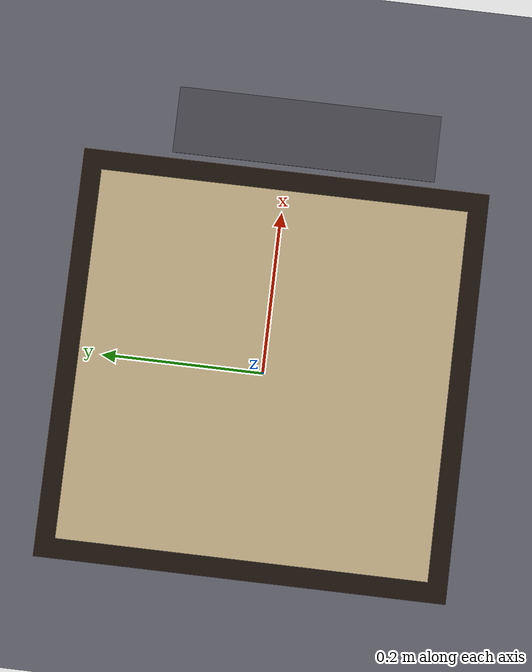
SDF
<?xml version="1.0" ?>
<sdf version="1.11">
  <world name="chess">

    <physics name="1ms" type="dart">
      <max_step_size>0.001</max_step_size>
      <real_time_factor>1.0</real_time_factor>
    </physics>

    <plugin filename="gz-sim-physics-system"
            name="gz::sim::systems::Physics"/>
    <plugin filename="gz-sim-user-commands-system"
            name="gz::sim::systems::UserCommands"/>
    <plugin filename="gz-sim-scene-broadcaster-system"
            name="gz::sim::systems::SceneBroadcaster"/>
    <!-- Pre-wired for future piece/gripper contact sensing; no contact sensors yet in Phase 0. -->
    <plugin filename="gz-sim-contact-system"
            name="gz::sim::systems::Contact"/>

    <light type="directional" name="sun">
      <cast_shadows>true</cast_shadows>
      <pose>0 0 6 0 0 0</pose>
      <diffuse>0.9 0.9 0.9 1</diffuse>
      <specular>0.3 0.3 0.3 1</specular>
      <direction>-0.3 0.2 -0.9</direction>
    </light>

    <scene>
      <ambient>0.4 0.4 0.4 1</ambient>
      <background>0.7 0.78 0.85 1</background>
    </scene>

    <!-- Table / ground plane (board surface datum z=0). -->
    <model name="ground_plane">
      <static>true</static>
      <link name="link">
        <collision name="collision">
          <geometry><plane><normal>0 0 1</normal><size>4 4</size></plane></geometry>
        </collision>
        <visual name="visual">
          <geometry><plane><normal>0 0 1</normal><size>4 4</size></plane></geometry>
          <material>
            <ambient>0.3 0.3 0.32 1</ambient>
            <diffuse>0.4 0.4 0.45 1</diffuse>
          </material>
        </visual>
      </link>
    </model>

    <!-- Chessboard: frame + playing surface, top face at z=0. -->
    <model name="chessboard">
      <static>true</static>
      <pose>0 0 0 0 0 0</pose>
      <link name="link">
        <visual name="frame">
          <pose>0 0 -0.006 0 0 0</pose>
          <geometry><box><size>0.5072 0.5072 0.012</size></box></geometry>
          <material>
            <ambient>0.12 0.08 0.05 1</ambient>
            <diffuse>0.12 0.08 0.05 1</diffuse>
          </material>
        </visual>
        <visual name="surface">
          <pose>0 0 0.001 0 0 0</pose>
          <geometry><box><size>0.4572 0.4572 0.002</size></box></geometry>
          <material>
            <ambient>0.80 0.72 0.55 1</ambient>
            <diffuse>0.80 0.72 0.55 1</diffuse>
          </material>
        </visual>
        <collision name="collision">
          <pose>0 0 -0.006 0 0 0</pose>
          <geometry><box><size>0.5072 0.5072 0.012</size></box></geometry>
        </collision>
      </link>
    </model>

    <!-- Capture graveyard tray on the +X side. -->
    <model name="graveyard">
      <static>true</static>
      <pose>0.3025 -0.020 0 0 0 0</pose>
      <link name="link">
        <visual name="tray">
          <pose>0 0 -0.005 0 0 0</pose>
          <geometry><box><size>0.083 0.328 0.010</size></box></geometry>
          <material>
            <ambient>0.30 0.30 0.33 1</ambient>
            <diffuse>0.30 0.30 0.33 1</diffuse>
          </material>
        </visual>
        <collision name="collision">
          <pose>0 0 -0.005 0 0 0</pose>
          <geometry><box><size>0.083 0.328 0.010</size></box></geometry>
        </collision>
      </link>
    </model>

    <gui fullscreen="0">
      <camera name="user_camera">
        <pose>-0.6 -0.9 0.8 0 0.5 0.9</pose>
      </camera>
    </gui>

  </world>
</sdf>
